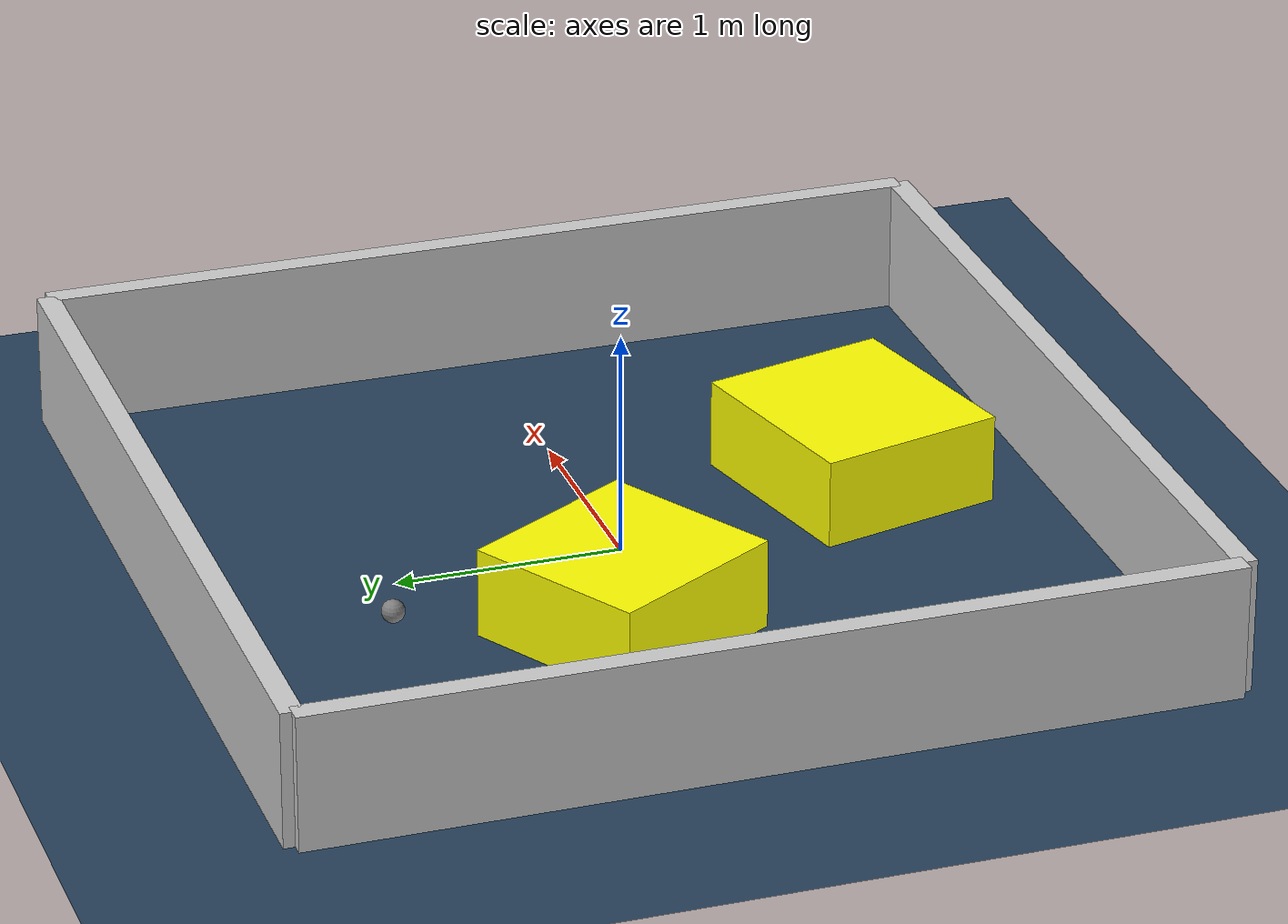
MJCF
<?xml version="1.0" ?>
<mujoco model="generated_environment">
  <option timestep="0.01" integrator="RK4" cone="elliptic"/>
  <default>
    <geom density="1"/>
  </default>
  <asset>
    <texture builtin="gradient" height="3072" rgb1="0.3 0.5 0.7" rgb2="0 0 0" type="skybox" width="512"/>
    <texture builtin="checker" height="300" mark="edge" markrgb="0.8 0.8 0.8" name="groundplane" rgb1="0.2 0.3 0.4" rgb2="0.1 0.2 0.3" type="2d" width="300"/>
    <material name="groundplane" reflectance="0.2" texrepeat="5 5" texture="groundplane" texuniform="true"/>
    <material name="robot" rgba="0.0 1.0 0.0 1"/>
  </asset>
  <worldbody>
    <light dir="0 0 -1" directional="true" pos="0 0 1.5"/>
    <geom condim="4" friction="1.0 0.005 0.001" material="groundplane" name="floor" size="0 0 0.05" type="plane"/>
    <body name="walls">
      <geom name="wall_1" condim="4" pos="-2.0 0.0 0.3" rgba="0.800000011920929 0.800000011920929 0.800000011920929 1.0" size="0.05 2.0 0.3" type="box"/>
      <geom name="wall_2" condim="4" pos="2.0 0.0 0.3" rgba="0.800000011920929 0.800000011920929 0.800000011920929 1.0" size="0.05 2.0 0.3" type="box"/>
      <geom name="wall_3" condim="4" pos="0.0 -2.0 0.3" rgba="0.800000011920929 0.800000011920929 0.800000011920929 1.0" size="2.0 0.05 0.3" type="box"/>
      <geom name="wall_4" condim="4" pos="0.0 2.0 0.3" rgba="0.800000011920929 0.800000011920929 0.800000011920929 1.0" size="2.0 0.05 0.3" type="box"/>
    </body>
    <body name="robot">
      <joint name="joint_x" type="slide" pos="0 0 0" axis="1 0 0"/>
      <joint name="joint_y" type="slide" pos="0 0 0" axis="0 1 0"/>
      <geom name="robot" type="sphere" pos="-0.5935881300129966 1.18413807133483 0.2" size="0.05" mass="5." friction="1.0 0.005 0.0001" condim="4"/>
      <site name="sensor_ball"/>
    </body>
    <body name="obstacle_1_movable">
      <geom name="obstacle_1_movable" condim="4" pos="0.2984219634088252 -1.155006984885778 0.2" euler="0 0 103.64167343573789" friction="1.0 0.005 0.001" rgba="1 1 0 1" size="0.42569900612787115 0.468025041207832 0.2" type="box" mass="0.1"/>
      <joint type="free"/>
    </body>
    <body name="obstacle_2_movable">
      <geom name="obstacle_2_movable" condim="4" pos="-0.6988897016551825 0.2225977050271255 0.2" euler="0 0 29.921159897488586" friction="1.0 0.005 0.001" rgba="1 1 0 1" size="0.4213980178533102 0.43176250745416045 0.2" type="box" mass="0.1"/>
      <joint type="free"/>
    </body>
  </worldbody>
  <actuator>
    <motor name="actuator_x" joint="joint_x" gear="1" ctrlrange="-1 1"/>
    <motor name="actuator_y" joint="joint_y" gear="1" ctrlrange="-1 1"/>
  </actuator>
</mujoco>
